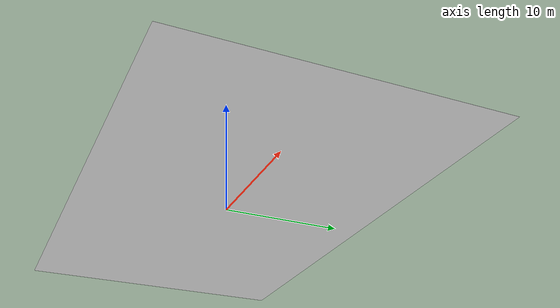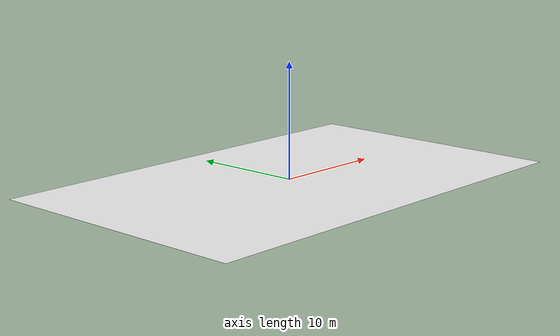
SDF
<?xml version="1.0" encoding="UTF-8"?>
<sdf version="1.5">
	<model name="terrain2">
		<static>true</static>
		<link name="terrain2_link">
			<pose>0 0 0 0 0 0</pose>
			<collision name='collision'>
        <geometry>
        	<mesh>
						<uri>model://terrain2/meshes/model.dae</uri>
						<scale>4 4 1</scale><!-- origin 85.9-->
					</mesh>
	      </geometry>
	      <surface>
	        <friction>
	          <ode>
	            <mu>100</mu>
	            <mu2>50</mu2>
	          </ode>
	        </friction>
	        <bounce/>
	        <contact>
	          <ode/>
	        </contact>
	      </surface>
	      <max_contacts>10</max_contacts>
	    </collision>

			<visual name="terrain2_mesh">
				<geometry>
					<mesh>
						<uri>model://terrain2/meshes/model.dae</uri>
						<scale>4 4 1</scale><!-- origin 85.9-->
					</mesh>
				</geometry>
			</visual>
		  <velocity_decay>
	      <linear>0</linear>
	      <angular>0</angular>
	    </velocity_decay>
	    <self_collide>0</self_collide>
	    <kinematic>0</kinematic>
	    <gravity>1</gravity>
		</link>
	</model>
</sdf>
